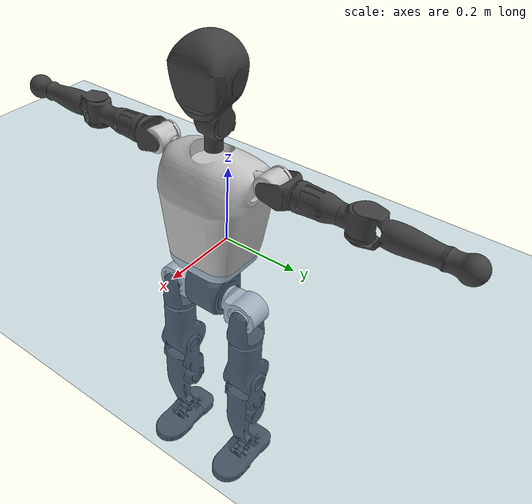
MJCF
<mujoco model="T1">
  <compiler angle="radian" assetdir="assets" balanceinertia="true" inertiafromgeom="false"/>

  <option timestep="0.005" density="1.2" viscosity="2e-05"/>

  <size nkey="1"/>

  <visual>
    <quality shadowsize="8192"/>
    <map shadowclip="0.5"/>
  </visual>

  <default>
    <default class="/">
      <joint armature="0.01" damping="0.01" frictionloss="0.1"/>
      <geom contype="0" conaffinity="0" group="1" solref="-1000 -80"/>
      <site size="0.01 0.005 0.005" group="5"/>
      <general forcelimited="true" biastype="affine" gainprm="25" biasprm="0 -25 -0.6"/>
      <default class="t1">
        <geom rgba="0.25 0.25 0.25 1"/>
        <default class="visual">
          <geom type="mesh" group="2"/>
        </default>
        <default class="collision">
          <geom group="3"/>
        </default>
        <default class="foot">
          <geom size="0.1115 0.05 0.015" type="box" condim="6" group="4" priority="1" solimp="0.015 1 0.015"/>
        </default>
        <default class="reward_collision_sphere">
          <geom group="5" rgba="1 0 0 1"/>
        </default>
      </default>
    </default>
  </default>

  <asset>
    <texture type="skybox" colorspace="auto" name="//unnamed_texture_0" builtin="gradient" rgb1="0.95 0.95 0.95" rgb2="0.95 0.95 0.95" width="100" height="600"/>
    <texture type="2d" colorspace="auto" name="texplane" builtin="checker" rgb1="0.345 0.575 0.748" rgb2="0.345 0.575 0.748" markrgb="1 1 1" width="512" height="512"/>
    <material name="MatPlane" class="/" texture="texplane" texuniform="true" texrepeat="2 2" specular="0.9"/>
    <mesh name="Trunk" class="/" file="Trunk.stl"/>
    <mesh name="H1" class="/" file="H1.stl"/>
    <mesh name="H2" class="/" file="H2.stl"/>
    <mesh name="AL1" class="/" file="AL1.stl"/>
    <mesh name="AL2" class="/" file="AL2.stl"/>
    <mesh name="AL3" class="/" file="AL3.stl"/>
    <mesh name="left_hand_link" class="/" file="left_hand_link.stl"/>
    <mesh name="AR1" class="/" file="AR1.stl"/>
    <mesh name="AR2" class="/" file="AR2.stl"/>
    <mesh name="AR3" class="/" file="AR3.stl"/>
    <mesh name="right_hand_link" class="/" file="right_hand_link.stl"/>
    <mesh name="Waist" class="/" file="Waist.stl"/>
    <mesh name="Hip_Pitch_Left" class="/" file="Hip_Pitch_Left.stl"/>
    <mesh name="Hip_Roll_Left" class="/" file="Hip_Roll_Left.stl"/>
    <mesh name="Hip_Yaw_Left" class="/" file="Hip_Yaw_Left.stl"/>
    <mesh name="Shank_Left" class="/" file="Shank_Left.stl"/>
    <mesh name="Ankle_Cross_Left" class="/" file="Ankle_Cross_Left.stl"/>
    <mesh name="left_foot_link" class="/" file="left_foot_link.stl"/>
    <mesh name="Hip_Pitch_Right" class="/" file="Hip_Pitch_Right.stl"/>
    <mesh name="Hip_Roll_Right" class="/" file="Hip_Roll_Right.stl"/>
    <mesh name="Hip_Yaw_Right" class="/" file="Hip_Yaw_Right.stl"/>
    <mesh name="Shank_Right" class="/" file="Shank_Right.stl"/>
    <mesh name="Ankle_Cross_Right" class="/" file="Ankle_Cross_Right.stl"/>
    <mesh name="right_foot_link" class="/" file="right_foot_link.stl"/>
  </asset>

  <worldbody>
    <geom name="floor" class="/" size="100 100 0.125" type="plane" group="0" material="MatPlane"/>
    <light name="toplight_shadow" class="/" pos="0 0 5" dir="0.0990148 0.0990148 -0.990148" type="directional" ambient="0.04 0.04 0.04" diffuse="0.55 0.55 0.55" specular="0.12 0.12 0.12"/>
    <light name="toplight_fill" class="/" pos="0 0 5" dir="0.0990148 0.0990148 -0.990148" type="directional" castshadow="false" ambient="0.04 0.04 0.04" diffuse="0.3 0.3 0.3" specular="0.08 0.08 0.08"/>
    <body name="trunk" childclass="t1" pos="-0.000524302 0.000109914 -3.87972e-05" quat="0.999999 -0.000505909 -0.000929194 -0.000580047">
      <inertial pos="0.0439615 -0.00268514 0.118174" quat="0.999944 -0.00138627 -0.0103133 -0.00193947" mass="11.6318" diaginertia="0.0392884 0.0954189 0.0958577"/>
      <joint name="//unnamed_joint_0" type="free" armature="0" damping="0" frictionloss="0"/>
      <geom name="//unnamed_geom_1" class="visual" rgba="0.76 0.76 0.76 1" mesh="Trunk"/>
      <geom name="//unnamed_geom_2" class="collision" size="0.0751401 0.100187 0.15028" pos="0.0504915 0 0.134516" type="box"/>
      <geom name="//unnamed_geom_3" class="reward_collision_sphere" size="0.115215" pos="0.0504915 0 0.112097"/>
      <geom name="//unnamed_geom_4" class="reward_collision_sphere" size="0.015028" pos="0.0504915 0.0886645 0"/>
      <geom name="//unnamed_geom_5" class="reward_collision_sphere" size="0.015028" pos="0.0504915 -0.0886645 0"/>
      <geom name="//unnamed_geom_6" class="reward_collision_sphere" size="0.015028" pos="0.0504915 0.111613 0.201774"/>
      <geom name="//unnamed_geom_7" class="reward_collision_sphere" size="0.015028" pos="0.0504915 -0.111613 0.201774"/>
      <site name="imu" pos="0.00557821 -0.00458372 -0.00565062" size="0.0100187"/>
      <camera name="track" pos="0 -2.08622 0" quat="0.707107 0.707107 0 0" mode="trackcom"/>
      <camera name="ego_camera" pos="0.102666 0 0.470806" quat="-0.5 -0.5 0.5 0.5"/>
      <body name="H1" pos="0.0521736 -0.000482972 0.271075" quat="1 -9.32056e-05 -0.000270488 -0.000276175">
        <inertial pos="-0.00176701 0.000857828 0.0639396" quat="0.763232 -0.00158321 0.00348037 0.646113" mass="0.438981" diaginertia="9.99738e-05 0.000264033 0.000253734"/>
        <joint name="AAHead_yaw" pos="0 0 0" axis="-0.0110148 -0.00387587 0.999932" stiffness="0.00833113" range="-1.54988 1.57795" armature="0.00974875" damping="0.00852778" frictionloss="0.100567"/>
        <geom name="//unnamed_geom_8" class="visual" mesh="H1"/>
        <body name="H2" pos="-0.000138446 0.00223388 0.0703129" quat="1 0.000214346 -0.000176975 7.74464e-05">
          <inertial pos="0.00574395 0.00306551 0.110046" quat="0.988302 0.108293 -0.0736723 -0.0781336" mass="0.63058" diaginertia="0.00087629 0.00233161 0.00304105"/>
          <joint name="Head_pitch" pos="0 0 0" axis="-0.00263496 -0.999995 -0.00184034" range="-1.22432 0.350029" armature="0.00877615" damping="0.00722842" frictionloss="0.113238"/>
          <geom name="//unnamed_geom_9" class="visual" mesh="H2"/>
          <geom name="//unnamed_geom_10" class="collision" size="0.0801494" pos="0.00841525 0 0.123306"/>
          <geom name="//unnamed_geom_11" class="reward_collision_sphere" size="0.0901681" pos="0.0168305 0 0.112097"/>
        </body>
      </body>
      <body name="AL1" pos="0.0506219 0.110032 0.243134" quat="1 -4.18934e-05 0.000472565 3.03052e-05">
        <inertial pos="-0.00317382 0.0470638 0.00129744" quat="0.504158 0.495288 -0.503471 0.497023" mass="0.53725" diaginertia="0.000578279 0.00160501 0.000511506"/>
        <joint name="Left_Shoulder_Pitch" pos="0 0 0" axis="0.0024271 0.999909 0.0132477" range="-3.30506 1.22365" armature="0.0103173" damping="0.00703965" frictionloss="0.0984895"/>
        <geom name="//unnamed_geom_12" class="visual" rgba="0.76 0.76 0.76 1" mesh="AL1"/>
        <body name="AL2" pos="-0.000298753 0.0483239 -0.00135261" quat="1 6.03295e-05 -0.000133223 -9.39778e-06">
          <inertial pos="0.00339289 0.0396055 -0.00219907" quat="0.489488 0.508964 -0.48335 0.517426" mass="0.158942" diaginertia="0.000167406 0.000424347 0.000311234"/>
          <joint name="Left_Shoulder_Roll" pos="0 0 0" axis="-0.999998 0.00041571 -0.00176324" stiffness="4.47965e-05" range="-1.57701 1.73673" armature="0.0102427" damping="0.00371749" frictionloss="0.101841"/>
          <geom name="//unnamed_geom_13" class="visual" mesh="AL2"/>
          <body name="AL3" pos="0.00082836 0.0630633 0.000171077" quat="1 -0.000209241 -0.000302913 0.000158205">
            <inertial pos="-0.000874431 0.0891173 -2.81065e-05" quat="0.706235 0.707867 0.00314225 -0.0121423" mass="1.02982" diaginertia="0.00545761 0.0159675 0.00107113"/>
            <joint name="Left_Elbow_Pitch" pos="0 0 0" axis="0.00129316 -0.999999 -0.000742969" range="-2.25233 2.28034" armature="0.0101298" damping="0.0236109" frictionloss="0.112967"/>
            <geom name="//unnamed_geom_14" class="visual" mesh="AL3"/>
            <geom name="//unnamed_geom_15" class="collision" size="0.030056 0.0751401" pos="0 0.0521556 0" quat="0.707105 0.707108 0 0" type="cylinder"/>
            <geom name="//unnamed_geom_16" class="reward_collision_sphere" size="0.0360672"/>
            <body name="left_hand_link" pos="0.00275105 0.154744 0.00189837" quat="1 8.94441e-05 -0.000271295 3.29805e-05">
              <inertial pos="0.00213697 0.113418 -0.00162595" quat="0.704939 0.709263 0.00119458 0.00232265" mass="0.328222" diaginertia="0.00342058 0.010325 0.000388992"/>
              <joint name="Left_Elbow_Yaw" pos="0 0 0" axis="-0.00142232 -0.00088559 0.999999" range="-2.44689 0.0222056" armature="0.0103842" damping="0.0108443" frictionloss="0.100568"/>
              <geom name="//unnamed_geom_17" class="visual" mesh="left_hand_link"/>
              <geom name="//unnamed_geom_18" class="collision" size="0.030056 0.0876634" pos="0 0.135605 0" quat="0.707105 0.707108 0 0" type="cylinder"/>
              <geom name="//unnamed_geom_19" class="reward_collision_sphere" size="0.0500934"/>
              <geom name="//unnamed_geom_20" class="reward_collision_sphere" size="0.0350654" pos="0 0.114742 0"/>
              <geom name="//unnamed_geom_21" class="reward_collision_sphere" size="0.0350654" pos="0 0.224269 0"/>
            </body>
          </body>
        </body>
      </body>
      <body name="AR1" pos="0.0478324 -0.1113 0.244938" quat="1 0.000816943 -0.000460816 0.000340067">
        <inertial pos="-0.00162728 -0.0465773 -0.000589438" quat="0.504191 0.495728 -0.50418 0.495831" mass="0.550725" diaginertia="0.000583774 0.0016363 0.000536068"/>
        <joint name="Right_Shoulder_Pitch" pos="0 0 0" axis="-0.00267942 -0.999994 0.00223495" range="-1.21211 3.30409" armature="0.0104996" damping="0.00110408" frictionloss="0.102579"/>
        <geom name="//unnamed_geom_22" class="visual" rgba="0.76 0.76 0.76 1" mesh="AR1"/>
        <body name="AR2" pos="-0.000668592 -0.0482338 -0.0025015" quat="0.999999 0.000612791 -0.000746813 0.000549038">
          <inertial pos="0.00406567 -0.0404138 0.000888732" quat="0.514101 0.487029 -0.507516 0.490846" mass="0.158768" diaginertia="0.000166668 0.000420883 0.000309506"/>
          <joint name="Right_Shoulder_Roll" pos="0 0 0" axis="-0.999987 -0.00467815 0.00192393" range="-1.73119 1.57731" armature="0.0100676" damping="0" frictionloss="0.10045"/>
          <geom name="//unnamed_geom_23" class="visual" mesh="AR2"/>
          <body name="AR3" pos="-0.00149923 -0.0637545 -0.000833401" quat="0.999999 0.000359688 1.12424e-05 -0.00108899">
            <inertial pos="0.00224264 -0.0885502 -0.00052775" quat="0.708746 0.705457 -0.00264287 -0.0014371" mass="1.02493" diaginertia="0.00555741 0.0163935 0.00112585"/>
            <joint name="Right_Elbow_Pitch" pos="0 0 0" axis="0.000635097 1 0.000603476" stiffness="0.00246694" range="-2.25479 2.21695" armature="0.0102799" damping="0.011033" frictionloss="0.0992811"/>
            <geom name="//unnamed_geom_24" class="visual" mesh="AR3"/>
            <geom name="//unnamed_geom_25" class="collision" size="0.030056 0.0751401" pos="0 -0.0521556 0" quat="0.707105 0.707108 0 0" type="cylinder"/>
            <geom name="//unnamed_geom_26" class="reward_collision_sphere" size="0.0360672"/>
            <body name="right_hand_link" pos="-0.00124309 -0.154008 0.00145321" quat="0.999999 0.000103863 0.00094486 0.000390474">
              <inertial pos="0.00207778 -0.115223 -0.00118445" quat="0.706942 0.70727 0.00157821 -0.000370051" mass="0.314179" diaginertia="0.00322285 0.00961812 0.000379293"/>
              <joint name="Right_Elbow_Yaw" pos="0 0 0" axis="-0.000921766 -0.00444889 0.99999" range="0.000565533 2.39445" armature="0.0104094" damping="0.00408084" frictionloss="0.100789"/>
              <geom name="//unnamed_geom_27" class="visual" mesh="right_hand_link"/>
              <geom name="//unnamed_geom_28" class="collision" size="0.030056 0.0876634" pos="0 -0.135605 0" quat="0.707105 0.707108 0 0" type="cylinder"/>
              <geom name="//unnamed_geom_29" class="reward_collision_sphere" size="0.0500934"/>
              <geom name="//unnamed_geom_30" class="reward_collision_sphere" size="0.0350654" pos="0 -0.114742 0"/>
              <geom name="//unnamed_geom_31" class="reward_collision_sphere" size="0.0350654" pos="0 -0.224269 0"/>
            </body>
          </body>
        </body>
      </body>
      <body name="Waist" pos="0.0515107 -0.00306691 -0.129314" quat="1 -0.000202559 -0.00027685 -0.00027998">
        <inertial pos="0.000399176 0.00109067 0.00839223" quat="0.982913 0.00227964 -0.18404 -0.00227908" mass="2.51384" diaginertia="0.00227716 0.00647637 0.00816832"/>
        <joint name="Waist" pos="0 0 0" axis="-0.00460321 -0.00310423 0.999985" stiffness="0.00017936" range="-1.5619 1.58425" armature="0.0101908" damping="0.000274056" frictionloss="0.10214"/>
        <geom name="//unnamed_geom_32" class="visual" mesh="Waist"/>
        <body name="Hip_Pitch_Left" pos="0.00218074 0.110928 -0.000150282" quat="1 -1.84219e-05 -0.000145993 0.000233393">
          <inertial pos="0.00134069 -0.00762101 -0.0227117" quat="0.974727 0.222753 0.0159447 0.00590908" mass="1.03551" diaginertia="0.000765435 0.00181124 0.00222855"/>
          <joint name="Left_Hip_Pitch" pos="0 0 0" axis="-0.00153337 0.999993 0.00339603" range="-1.81305 1.61457" armature="0.0104692" damping="0.000557003" frictionloss="0.100804"/>
          <geom name="//unnamed_geom_33" class="visual" rgba="0.76 0.76 0.76 1" mesh="Hip_Pitch_Left"/>
          <body name="Hip_Roll_Left" pos="0.00279948 0.000715047 -0.024316" quat="1 -4.92672e-05 -1.76735e-06 -0.000128662">
            <inertial pos="0.00146889 0.000766885 -0.0621698" quat="0.707038 -0.00611959 -0.00601027 0.707124" mass="0.395542" diaginertia="0.000768227 0.00187131 0.000908907"/>
            <joint name="Left_Hip_Roll" pos="0 0 0" axis="-1 -5.41185e-05 -5.99292e-05" range="-1.55731 0.25047" armature="0.00970673" damping="0.00487542" frictionloss="0.100766"/>
            <geom name="//unnamed_geom_34" class="visual" mesh="Hip_Roll_Left"/>
            <geom name="//unnamed_geom_35" class="reward_collision_sphere" size="0.0551027"/>
            <body name="Hip_Yaw_Left" pos="-0.00012066 0.00193431 -0.0898743" quat="1 -0.00018522 -0.000116424 7.16114e-05">
              <inertial pos="-0.00600559 -1.14519e-05 -0.101016" quat="0.700321 -0.0379547 -0.0232962 0.712437" mass="2.12875" diaginertia="0.0107078 0.0302106 0.00457245"/>
              <joint name="Left_Hip_Yaw" pos="0 0 0" axis="0.00158871 0.00200093 -0.999997" range="-0.988879 1.05787" armature="0.010203" damping="0" frictionloss="0.0988718"/>
              <geom name="//unnamed_geom_36" class="visual" mesh="Hip_Yaw_Left"/>
              <geom name="//unnamed_geom_37" class="collision" size="0.0500934 0.0801494" type="cylinder"/>
              <body name="Shank_Left" pos="-0.0115968 0.00111297 -0.152934" quat="1 6.0931e-05 -3.28943e-05 -2.96132e-05">
                <inertial pos="-0.00528837 0.000556593 -0.141322" quat="0.997465 0.00432286 -0.0266139 0.065848" mass="1.76648" diaginertia="0.0148327 0.0425978 0.00322769"/>
                <joint name="Left_Knee_Pitch" pos="0 0 0" axis="0.0059219 0.999982 0.00101148" stiffness="0.00564337" range="0.00677722 2.34546" armature="0.0100515" damping="0.0150766" frictionloss="0.105534"/>
                <geom name="//unnamed_geom_38" class="visual" mesh="Shank_Left"/>
                <geom name="//unnamed_geom_39" class="collision" size="0.0500934 0.0751401" pos="0 0 -0.134516" type="cylinder"/>
                <geom name="//unnamed_geom_40" class="reward_collision_sphere" size="0.0651214"/>
                <body name="Ankle_Cross_Left" pos="0.000651772 0.00067903 -0.315978" quat="1 0.000237703 0.000365463 -0.000446496">
                  <inertial pos="-0.00536713 0.00253371 -0.00881404" quat="0.442264 0.550966 0.550944 0.444184" mass="0.0718675" diaginertia="1.22068e-05 3.05982e-05 2.00692e-05"/>
                  <joint name="Left_Ankle_Pitch" pos="0 0 0" axis="0.00521159 0.999964 -0.00664538" range="-0.889072 0.330569" armature="0.00893111" damping="0.00399201" frictionloss="0.101893"/>
                  <geom name="//unnamed_geom_41" class="visual" mesh="Ankle_Cross_Left"/>
                  <body name="left_foot_link" pos="0.000700857 -0.000312696 -0.0115178" quat="0.999999 -0.00121405 0.000255177 -0.000518805">
                    <inertial pos="-0.00255845 -4.04486e-06 -0.00940427" quat="0.000277568 0.621111 0.000500882 0.783723" mass="0.678768" diaginertia="0.00113577 0.00289204 0.00393173"/>
                    <joint name="Left_Ankle_Roll" pos="0 0 0" axis="-1 6.72341e-05 -0.000293975" range="-0.486925 0.391792" armature="0.0101372" damping="0.010863" frictionloss="0.0882954"/>
                    <geom name="//unnamed_geom_42" class="visual" mesh="left_foot_link"/>
                    <geom name="left_foot" class="foot" size="0.104653 0.0493904 0.0154517" pos="0.00841525 0 -0.0168145"/>
                    <geom name="//unnamed_geom_44" class="reward_collision_sphere" size="0.0520971" pos="0.00841525 0 -0.0168145"/>
                    <geom name="//unnamed_geom_45" class="reward_collision_sphere" size="0.030056" pos="0.0799449 -0.0239916 -0.0168145"/>
                    <geom name="//unnamed_geom_46" class="reward_collision_sphere" size="0.030056" pos="-0.0589068 -0.0239916 -0.0168145"/>
                    <site name="left_foot" class="foot" pos="0.00841525 0 -0.0168145" size="0.0100187"/>
                  </body>
                </body>
              </body>
            </body>
          </body>
        </body>
        <body name="Hip_Pitch_Right" pos="-0.00259458 -0.112824 0.000237198" quat="1 -9.61367e-05 -0.000404885 -0.000499511">
          <inertial pos="-0.00037038 0.00643538 -0.0194838" quat="0.973486 -0.228212 0.0149504 -0.00451853" mass="1.0227" diaginertia="0.000782838 0.00182004 0.00228012"/>
          <joint name="Right_Hip_Pitch" pos="0 0 0" axis="-0.00352938 -0.999992 0.00164991" stiffness="0.00353995" range="-1.55504 1.80244" armature="0.0105978" damping="0.00630467" frictionloss="0.103268"/>
          <geom name="//unnamed_geom_47" class="visual" rgba="0.76 0.76 0.76 1" mesh="Hip_Pitch_Right"/>
          <body name="Hip_Roll_Right" pos="0.00227042 -0.00241185 -0.0238541" quat="1 4.69233e-05 7.28215e-05 2.15884e-05">
            <inertial pos="0.000116692 -0.00089152 -0.0588445" quat="0.705341 -0.00586588 -0.00721172 0.708807" mass="0.400544" diaginertia="0.000738011 0.00191898 0.000916532"/>
            <joint name="Right_Hip_Roll" pos="0 0 0" axis="-0.999997 0.00141849 0.00213062" stiffness="0.00975046" range="-0.199592 1.51953" armature="0.00962827" damping="0" frictionloss="0.0875887"/>
            <geom name="//unnamed_geom_48" class="visual" mesh="Hip_Roll_Right"/>
            <geom name="//unnamed_geom_49" class="reward_collision_sphere" size="0.0551027"/>
            <body name="Hip_Yaw_Right" pos="0.00263786 -0.00151811 -0.0909388" quat="1 8.99362e-05 9.04562e-05 0.000122898">
              <inertial pos="-0.00539369 -0.00133277 -0.0991666" quat="0.715024 -0.0222887 -0.042763 0.697435" mass="2.15965" diaginertia="0.0105076 0.0313783 0.00443805"/>
              <joint name="Right_Hip_Yaw" pos="0 0 0" axis="0.00966694 0.000932163 -0.999953" stiffness="0.0047408" range="-1.00646 0.998001" armature="0.00923069" damping="0.0147532" frictionloss="0.102156"/>
              <geom name="//unnamed_geom_50" class="visual" mesh="Hip_Yaw_Right"/>
              <geom name="//unnamed_geom_51" class="collision" size="0.0500934 0.0801494" type="cylinder"/>
              <body name="Shank_Right" pos="-0.00907015 -9.38378e-05 -0.150517" quat="1 -0.000247425 0.000425942 -3.71561e-05">
                <inertial pos="-0.00532159 0.000323038 -0.138007" quat="0.999317 -0.00622238 -0.0295345 -0.0213238" mass="1.82734" diaginertia="0.0153006 0.0437504 0.00353847"/>
                <joint name="Right_Knee_Pitch" pos="0 0 0" axis="0.000102513 -0.999975 0.00713789" range="-2.33364 0.0149004" armature="0.0100803" damping="0.0208784" frictionloss="0.0974296"/>
                <geom name="//unnamed_geom_52" class="visual" mesh="Shank_Right"/>
                <geom name="//unnamed_geom_53" class="collision" size="0.0500934 0.0751401" pos="0 0 -0.134516" type="cylinder"/>
                <geom name="//unnamed_geom_54" class="reward_collision_sphere" size="0.0651214"/>
                <body name="Ankle_Cross_Right" pos="0.000159345 -0.000340508 -0.315625" quat="1 -0.000876835 0.000292261 -0.000337133">
                  <inertial pos="-0.00327585 0.00209668 -0.00937093" quat="0.443264 0.550722 0.551267 0.443088" mass="0.0733361" diaginertia="1.18455e-05 3.16119e-05 1.96969e-05"/>
                  <joint name="Right_Ankle_Pitch" pos="0 0 0" axis="-0.0041301 -0.999991 0.00042902" range="-0.402015 0.862528" armature="0.010185" damping="0.00494902" frictionloss="0.101881"/>
                  <geom name="//unnamed_geom_55" class="visual" mesh="Ankle_Cross_Right"/>
                  <body name="right_foot_link" pos="0.00245119 0.000311374 -0.0133478" quat="1 -0.000129729 8.59438e-05 2.78907e-07">
                    <inertial pos="-0.000104327 0.00168495 -0.00996912" quat="0.000235385 0.620625 -0.000799138 0.784107" mass="0.728106" diaginertia="0.00118004 0.00302327 0.00391447"/>
                    <joint name="Right_Ankle_Roll" pos="0 0 0" axis="-0.999977 0.00603872 0.00308522" range="-0.42686 0.432257" armature="0.0103429" damping="0.00765604" frictionloss="0.0873669"/>
                    <geom name="//unnamed_geom_56" class="visual" mesh="right_foot_link"/>
                    <geom name="right_foot" class="foot" size="0.100168 0.0478109 0.0152767" pos="0.00841525 0 -0.0168145"/>
                    <geom name="//unnamed_geom_58" class="reward_collision_sphere" size="0.0400747"/>
                    <geom name="//unnamed_geom_59" class="reward_collision_sphere" size="0.030056" pos="0.00841525 0 -0.0168145"/>
                    <geom name="//unnamed_geom_60" class="reward_collision_sphere" size="0.030056" pos="0.0799449 0.0239916 -0.0168145"/>
                    <geom name="//unnamed_geom_61" class="reward_collision_sphere" size="0.030056" pos="-0.0589068 0.0239916 -0.0168145"/>
                    <site name="right_foot" class="foot" pos="0.00841525 0 -0.0168145" size="0.0100187"/>
                  </body>
                </body>
              </body>
            </body>
          </body>
        </body>
      </body>
    </body>
  </worldbody>

  <contact>
    <pair class="/" geom1="floor" geom2="left_foot" name="//unnamed_contact_0"/>
    <pair class="/" geom1="floor" geom2="right_foot" name="//unnamed_contact_1"/>
  </contact>

  <actuator>
    <general name="AAHead_yaw" class="/" joint="AAHead_yaw" forcerange="-7.29064 7.29064" gainprm="23.3081" biasprm="0 -23.3081 -0.583564"/>
    <general name="Head_pitch" class="/" joint="Head_pitch" forcerange="-6.73993 6.73993" gainprm="23.3081" biasprm="0 -23.3081 -0.583564"/>
    <general name="Left_Shoulder_Pitch" class="/" joint="Left_Shoulder_Pitch" forcerange="-16.1886 16.1886" gainprm="23.3081" biasprm="0 -23.3081 -0.583564"/>
    <general name="Left_Shoulder_Roll" class="/" joint="Left_Shoulder_Roll" forcerange="-18.2069 18.2069" gainprm="23.3081" biasprm="0 -23.3081 -0.583564"/>
    <general name="Left_Elbow_Pitch" class="/" joint="Left_Elbow_Pitch" forcerange="-18.2304 18.2304" gainprm="23.3081" biasprm="0 -23.3081 -0.583564"/>
    <general name="Left_Elbow_Yaw" class="/" joint="Left_Elbow_Yaw" forcerange="-18.2074 18.2074" gainprm="23.3081" biasprm="0 -23.3081 -0.583564"/>
    <general name="Right_Shoulder_Pitch" class="/" joint="Right_Shoulder_Pitch" forcerange="-18.5969 18.5969" gainprm="23.3081" biasprm="0 -23.3081 -0.583564"/>
    <general name="Right_Shoulder_Roll" class="/" joint="Right_Shoulder_Roll" forcerange="-18.2609 18.2609" gainprm="23.3081" biasprm="0 -23.3081 -0.583564"/>
    <general name="Right_Elbow_Pitch" class="/" joint="Right_Elbow_Pitch" forcerange="-17.972 17.972" gainprm="23.3081" biasprm="0 -23.3081 -0.583564"/>
    <general name="Right_Elbow_Yaw" class="/" joint="Right_Elbow_Yaw" forcerange="-17.8366 17.8366" gainprm="23.3081" biasprm="0 -23.3081 -0.583564"/>
    <general name="Waist" class="/" joint="Waist" forcerange="-30.2174 30.2174" gainprm="23.3081" biasprm="0 -23.3081 -0.583564"/>
    <general name="Left_Hip_Pitch" class="/" joint="Left_Hip_Pitch" forcerange="-44.1988 44.1988" gainprm="23.3081" biasprm="0 -23.3081 -0.583564"/>
    <general name="Left_Hip_Roll" class="/" joint="Left_Hip_Roll" forcerange="-30.1208 30.1208" gainprm="23.3081" biasprm="0 -23.3081 -0.583564"/>
    <general name="Left_Hip_Yaw" class="/" joint="Left_Hip_Yaw" forcerange="-30.0593 30.0593" gainprm="23.3081" biasprm="0 -23.3081 -0.583564"/>
    <general name="Left_Knee_Pitch" class="/" joint="Left_Knee_Pitch" forcerange="-58.1596 58.1596" gainprm="23.3081" biasprm="0 -23.3081 -0.583564"/>
    <general name="Left_Ankle_Pitch" class="/" joint="Left_Ankle_Pitch" forcerange="-21.9192 21.9192" gainprm="23.3081" biasprm="0 -23.3081 -0.583564"/>
    <general name="Left_Ankle_Roll" class="/" joint="Left_Ankle_Roll" forcerange="-13.7675 13.7675" gainprm="23.3081" biasprm="0 -23.3081 -0.583564"/>
    <general name="Right_Hip_Pitch" class="/" joint="Right_Hip_Pitch" forcerange="-45.9696 45.9696" gainprm="23.3081" biasprm="0 -23.3081 -0.583564"/>
    <general name="Right_Hip_Roll" class="/" joint="Right_Hip_Roll" forcerange="-32.555 32.555" gainprm="23.3081" biasprm="0 -23.3081 -0.583564"/>
    <general name="Right_Hip_Yaw" class="/" joint="Right_Hip_Yaw" forcerange="-28.4334 28.4334" gainprm="23.3081" biasprm="0 -23.3081 -0.583564"/>
    <general name="Right_Knee_Pitch" class="/" joint="Right_Knee_Pitch" forcerange="-57.6609 57.6609" gainprm="23.3081" biasprm="0 -23.3081 -0.583564"/>
    <general name="Right_Ankle_Pitch" class="/" joint="Right_Ankle_Pitch" forcerange="-19.6503 19.6503" gainprm="23.3081" biasprm="0 -23.3081 -0.583564"/>
    <general name="Right_Ankle_Roll" class="/" joint="Right_Ankle_Roll" forcerange="-16.1237 16.1237" gainprm="23.3081" biasprm="0 -23.3081 -0.583564"/>
  </actuator>

  <sensor>
    <gyro site="imu" name="imu_angular_velocity"/>
    <velocimeter site="imu" name="imu_linear_velocity"/>
    <framelinvel objtype="site" objname="left_foot" name="left_foot_global_linear_velocity"/>
    <framelinvel objtype="site" objname="right_foot" name="right_foot_global_linear_velocity"/>
  </sensor>

  <keyframe>
    <key name="home" qpos="0 0 0.6385 1 0 0 0 0 0 0 1.4 0 -0.4 0 -1.4 0 0.4 0 -0.4 0 0 0.8 -0.4 0 0.4 0 0 -0.8 0.4 0"/>
  </keyframe>
</mujoco>
